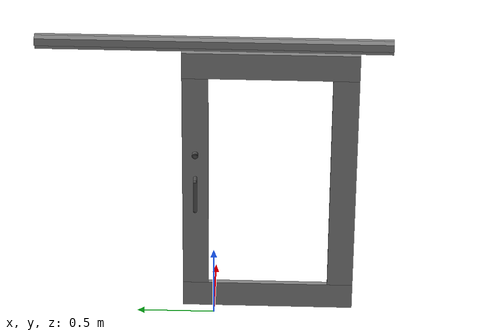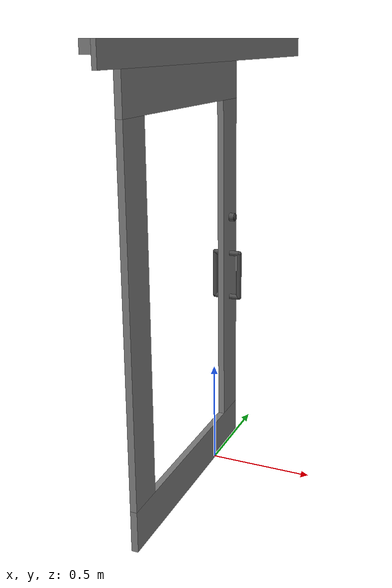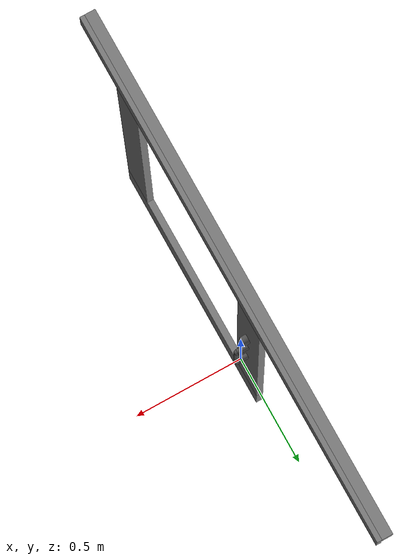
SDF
<?xml version="1.0" ?>
<sdf version="1.4">
    <model name='sliding_door_55_1100_2090'>
      <link name='link'>
        <inertial>
          <mass>50</mass>
          <inertia>
            <ixx>1</ixx>
            <ixy>0</ixy>
            <ixz>0</ixz>
            <iyy>1</iyy>
            <iyz>0</iyz>
            <izz>1</izz>
          </inertia>
        </inertial>
        <visual name='top_guard'>
          <pose>0.0225 0 2.065 0 0 0</pose>
          <geometry>
            <box>
              <size>0.045 2.2 0.05</size>
            </box>
          </geometry>
          <material>
            <!-- hsr_color/white -->
            <name>white</name>
            <ambient>1 1 1 1</ambient>
            <diffuse>0.5 0.5 0.5 1</diffuse>
            <specular>0 0 0 1</specular>
            <emissive>0 0 0 1</emissive>
            <shading>gouraud</shading>
            <receive_shadows>on</receive_shadows>
          </material>
        </visual>
        <collision name='collision_top_guard'>
          <pose>0.0225 0 2.065 0 0 0</pose>
          <geometry>
            <box>
              <size>0.045 2.2 0.05</size>
            </box>
          </geometry>
          <max_contacts>10</max_contacts>
          <surface>
            <bounce/>
            <friction>
              <ode/>
            </friction>
            <contact>
              <ode/>
            </contact>
          </surface>
        </collision>
        <visual name='front_guard'>
          <pose>0.055 0 2.04 0 0 0</pose>
          <geometry>
            <box>
              <size>0.020 2.2 0.10</size>
            </box>
          </geometry>
          <material>
            <!-- hsr_color/white -->
            <name>white</name>
            <ambient>1 1 1 1</ambient>
            <diffuse>0.5 0.5 0.5 1</diffuse>
            <specular>0 0 0 1</specular>
            <emissive>0 0 0 1</emissive>
            <shading>gouraud</shading>
            <receive_shadows>on</receive_shadows>
          </material>
        </visual>
        <collision name='collision_front_guard'>
          <pose>0.055 0 2.04 0 0 0</pose>
          <geometry>
            <box>
              <size>0.020 2.2 0.10</size>
            </box>
          </geometry>
          <max_contacts>10</max_contacts>
          <surface>
            <bounce/>
            <friction>
              <ode/>
            </friction>
            <contact>
              <ode/>
            </contact>
          </surface>
        </collision>
        <visual name='top_frame'>
          <pose>0.0225 -0.35 1.9075 0 0 0</pose>
          <geometry>
            <box>
              <size>0.030 1.1 0.185</size>
            </box>
          </geometry>
          <material>
            <!-- base_materials/wood -->
            <name>wood</name>
            <ambient>1 1 1 1</ambient>
            <diffuse>0.5 0.5 0.5 1.0</diffuse>
            <specular>0 0 0 1.0</specular>
            <shininess>12.5</shininess>
            <pbr>
              <metal>
                <albedo_map>model://base_materials/wood/textures/light_wood.png</albedo_map>
                <max_anisotropy>16</max_anisotropy>
                <metalness>0</metalness>
              </metal>
            </pbr>
          </material>
        </visual>
        <collision name='collision_top_frame'>
          <pose>0.0225 -0.35 1.9075 0 0 0</pose>
          <geometry>
            <box>
              <size>0.030 1.1 0.185</size>
            </box>
          </geometry>
          <max_contacts>10</max_contacts>
          <surface>
            <bounce/>
            <friction>
              <ode/>
            </friction>
            <contact>
              <ode/>
            </contact>
          </surface>
        </collision>
        <visual name='right_frame'>
          <pose>0.0225 0.1175 1.0250 0 0 0</pose>
          <geometry>
            <box>
              <size>0.030 0.165 1.580</size>
            </box>
          </geometry>
          <material>
            <!-- base_materials/wood -->
            <name>wood</name>
            <ambient>1 1 1 1</ambient>
            <diffuse>0.5 0.5 0.5 1.0</diffuse>
            <specular>0 0 0 1.0</specular>
            <shininess>12.5</shininess>
            <pbr>
              <metal>
                <albedo_map>model://base_materials/wood/textures/light_wood.png</albedo_map>
                <max_anisotropy>16</max_anisotropy>
                <metalness>0</metalness>
              </metal>
            </pbr>
          </material>
        </visual>
        <collision name='collision_right_frame'>
          <pose>0.0225 0.1175 1.0250 0 0 0</pose>
          <geometry>
            <box>
              <size>0.030 0.165 1.580</size>
            </box>
          </geometry>
          <max_contacts>10</max_contacts>
          <surface>
            <bounce/>
            <friction>
              <ode/>
            </friction>
            <contact>
              <ode/>
            </contact>
          </surface>
        </collision>
        <visual name='left_frame'>
          <pose>0.0225 -0.8175 1.0250 0 0 0</pose>
          <geometry>
            <box>
              <size>0.030 0.165 1.580</size>
            </box>
          </geometry>
          <material>
            <!-- base_materials/wood -->
            <name>wood</name>
            <ambient>1 1 1 1</ambient>
            <diffuse>0.5 0.5 0.5 1.0</diffuse>
            <specular>0 0 0 1.0</specular>
            <shininess>12.5</shininess>
            <pbr>
              <metal>
                <albedo_map>model://base_materials/wood/textures/light_wood.png</albedo_map>
                <max_anisotropy>16</max_anisotropy>
                <metalness>0</metalness>
              </metal>
            </pbr>
          </material>
        </visual>
        <collision name='collision_left_frame'>
          <pose>0.0225 -0.8175 1.0250 0 0 0</pose>
          <geometry>
            <box>
              <size>0.030 0.165 1.580</size>
            </box>
          </geometry>
          <max_contacts>10</max_contacts>
          <surface>
            <bounce/>
            <friction>
              <ode/>
            </friction>
            <contact>
              <ode/>
            </contact>
          </surface>
        </collision>
        <visual name='bottom_frame'>
          <pose>0.0225 -0.35 0.1425 0 0 0</pose>
          <geometry>
            <box>
              <size>0.030 1.1 0.185</size>
            </box>
          </geometry>
          <material>
            <!-- base_materials/wood -->
            <name>wood</name>
            <ambient>1 1 1 1</ambient>
            <diffuse>0.5 0.5 0.5 1.0</diffuse>
            <specular>0 0 0 1.0</specular>
            <shininess>12.5</shininess>
            <pbr>
              <metal>
                <albedo_map>model://base_materials/wood/textures/light_wood.png</albedo_map>
                <max_anisotropy>16</max_anisotropy>
                <metalness>0</metalness>
              </metal>
            </pbr>
          </material>
        </visual>
        <collision name='collision_bottom_frame'>
          <pose>0.0225 -0.35 0.1425 0 0 0</pose>
          <geometry>
            <box>
              <size>0.030 1.1 0.185</size>
            </box>
          </geometry>
          <max_contacts>10</max_contacts>
          <surface>
            <bounce/>
            <friction>
              <ode/>
            </friction>
            <contact>
              <ode/>
            </contact>
          </surface>
        </collision>
        <visual name='handle_top_frame'>
          <pose>0.0225 0.1175 1.0675 0 1.5708 0</pose>
          <geometry>
            <cylinder>
              <radius>0.0125</radius>
              <length>0.125</length>
            </cylinder>
          </geometry>
          <material>
            <!-- hsr_color/grey -->
            <name>grey</name>
            <ambient>0.7 0.7 0.7 1</ambient>
            <diffuse>0.3 0.3 0.3 1</diffuse>
            <specular>0 0 0 1</specular>
            <emissive>0 0 0 1</emissive>
            <shading>gouraud</shading>
            <receive_shadows>on</receive_shadows>
          </material>
        </visual>
        <collision name='collision_handle_top_frame'>
          <pose>0.0225 0.1175 1.0675 0 1.5708 0</pose>
          <geometry>
            <cylinder>
              <radius>0.0125</radius>
              <length>0.125</length>
            </cylinder>
          </geometry>
          <max_contacts>10</max_contacts>
          <surface>
            <bounce/>
            <friction>
              <ode/>
            </friction>
            <contact>
              <ode/>
            </contact>
          </surface>
        </collision>
        <visual name='handle_bottom_frame'>
          <pose>0.0225 0.1175 0.8425 0 1.5708 0</pose>
          <geometry>
            <cylinder>
              <radius>0.0125</radius>
              <length>0.125</length>
            </cylinder>
          </geometry>
          <material>
            <!-- hsr_color/grey -->
            <name>grey</name>
            <ambient>0.7 0.7 0.7 1</ambient>
            <diffuse>0.3 0.3 0.3 1</diffuse>
            <specular>0 0 0 1</specular>
            <emissive>0 0 0 1</emissive>
            <shading>gouraud</shading>
            <receive_shadows>on</receive_shadows>
          </material>
        </visual>
        <collision name='collision_handle_bottom_frame'>
          <pose>0.0225 0.1175 0.8425 0 1.5708 0</pose>
          <geometry>
            <cylinder>
              <radius>0.0125</radius>
              <length>0.125</length>
            </cylinder>
          </geometry>
          <max_contacts>10</max_contacts>
          <surface>
            <bounce/>
            <friction>
              <ode/>
            </friction>
            <contact>
              <ode/>
            </contact>
          </surface>
        </collision>
        <visual name='handle_front_frame'>
          <pose>0.085 0.1175 0.955 0 0 0</pose>
          <geometry>
            <cylinder>
              <radius>0.0125</radius>
              <length>0.225</length>
            </cylinder>
          </geometry>
          <material>
            <!-- hsr_color/grey -->
            <name>grey</name>
            <ambient>0.7 0.7 0.7 1</ambient>
            <diffuse>0.3 0.3 0.3 1</diffuse>
            <specular>0 0 0 1</specular>
            <emissive>0 0 0 1</emissive>
            <shading>gouraud</shading>
            <receive_shadows>on</receive_shadows>
          </material>
        </visual>
        <collision name='collision_handle_front_frame'>
          <pose>0.085 0.1175 0.955 0 0 0</pose>
          <geometry>
            <cylinder>
              <radius>0.0125</radius>
              <length>0.225</length>
            </cylinder>
          </geometry>
          <max_contacts>10</max_contacts>
          <surface>
            <bounce/>
            <friction>
              <ode/>
            </friction>
            <contact>
              <ode/>
            </contact>
          </surface>
        </collision>
        <visual name='handle_back_frame'>
          <pose>-0.040 0.1175 0.955 0 0 0</pose>
          <geometry>
            <cylinder>
              <radius>0.0125</radius>
              <length>0.225</length>
            </cylinder>
          </geometry>
          <material>
            <!-- hsr_color/grey -->
            <name>grey</name>
            <ambient>0.7 0.7 0.7 1</ambient>
            <diffuse>0.3 0.3 0.3 1</diffuse>
            <specular>0 0 0 1</specular>
            <emissive>0 0 0 1</emissive>
            <shading>gouraud</shading>
            <receive_shadows>on</receive_shadows>
          </material>
        </visual>
        <collision name='collision_handle_back_frame'>
          <pose>-0.040 0.1175 0.955 0 0 0</pose>
          <geometry>
            <cylinder>
              <radius>0.0125</radius>
              <length>0.225</length>
            </cylinder>
          </geometry>
          <max_contacts>10</max_contacts>
          <surface>
            <bounce/>
            <friction>
              <ode/>
            </friction>
            <contact>
              <ode/>
            </contact>
          </surface>
        </collision>
        <visual name='handle_front_top_corner'>
          <pose>0.0850 0.1175 1.0675 0 0 0</pose>
          <geometry>
            <sphere>
              <radius>0.0125</radius>
            </sphere>
          </geometry>
          <material>
            <!-- hsr_color/grey -->
            <name>grey</name>
            <ambient>0.7 0.7 0.7 1</ambient>
            <diffuse>0.3 0.3 0.3 1</diffuse>
            <specular>0 0 0 1</specular>
            <emissive>0 0 0 1</emissive>
            <shading>gouraud</shading>
            <receive_shadows>on</receive_shadows>
          </material>
        </visual>
        <collision name='collision_handle_front_top_corner'>
          <pose>0.0850 0.1175 1.0675 0 0 0</pose>
          <geometry>
            <sphere>
              <radius>0.0125</radius>
            </sphere>
          </geometry>
          <max_contacts>10</max_contacts>
          <surface>
            <bounce/>
            <friction>
              <ode/>
            </friction>
            <contact>
              <ode/>
            </contact>
          </surface>
        </collision>
        <visual name='handle_front_bottom_corner'>
          <pose>0.0850 0.1175 0.8425 0 0 0</pose>
          <geometry>
            <sphere>
              <radius>0.0125</radius>
            </sphere>
          </geometry>
          <material>
            <!-- hsr_color/grey -->
            <name>grey</name>
            <ambient>0.7 0.7 0.7 1</ambient>
            <diffuse>0.3 0.3 0.3 1</diffuse>
            <specular>0 0 0 1</specular>
            <emissive>0 0 0 1</emissive>
            <shading>gouraud</shading>
            <receive_shadows>on</receive_shadows>
          </material>
        </visual>
        <collision name='collision_handle_front_bottom_corner'>
          <pose>0.0850 0.1175 0.8425 0 0 0</pose>
          <geometry>
            <sphere>
              <radius>0.0125</radius>
            </sphere>
          </geometry>
          <max_contacts>10</max_contacts>
          <surface>
            <bounce/>
            <friction>
              <ode/>
            </friction>
            <contact>
              <ode/>
            </contact>
          </surface>
        </collision>
        <visual name='handle_back_top_corner'>
          <pose>-0.0400 0.1175 1.0675 0 0 0</pose>
          <geometry>
            <sphere>
              <radius>0.0125</radius>
            </sphere>
          </geometry>
          <material>
            <!-- hsr_color/grey -->
            <name>grey</name>
            <ambient>0.7 0.7 0.7 1</ambient>
            <diffuse>0.3 0.3 0.3 1</diffuse>
            <specular>0 0 0 1</specular>
            <emissive>0 0 0 1</emissive>
            <shading>gouraud</shading>
            <receive_shadows>on</receive_shadows>
          </material>
        </visual>
        <collision name='collision_handle_back_top_corner'>
          <pose>-0.0400 0.1175 1.0675 0 0 0</pose>
          <geometry>
            <sphere>
              <radius>0.0125</radius>
            </sphere>
          </geometry>
          <max_contacts>10</max_contacts>
          <surface>
            <bounce/>
            <friction>
              <ode/>
            </friction>
            <contact>
              <ode/>
            </contact>
          </surface>
        </collision>
        <visual name='handle_back_bottom_corner'>
          <pose>-0.0400 0.1175 0.8425 0 0 0</pose>
          <geometry>
            <sphere>
              <radius>0.0125</radius>
            </sphere>
          </geometry>
          <material>
            <!-- hsr_color/grey -->
            <name>grey</name>
            <ambient>0.7 0.7 0.7 1</ambient>
            <diffuse>0.3 0.3 0.3 1</diffuse>
            <specular>0 0 0 1</specular>
            <emissive>0 0 0 1</emissive>
            <shading>gouraud</shading>
            <receive_shadows>on</receive_shadows>
          </material>
        </visual>
        <collision name='collision_handle_back_bottom_corner'>
          <pose>-0.0400 0.1175 0.8425 0 0 0</pose>
          <geometry>
            <sphere>
              <radius>0.0125</radius>
            </sphere>
          </geometry>
          <max_contacts>10</max_contacts>
          <surface>
            <bounce/>
            <friction>
              <ode/>
            </friction>
            <contact>
              <ode/>
            </contact>
          </surface>
        </collision>
        <visual name='handle_lock1'>
          <pose>0.0225 0.1175 1.25 0 1.5708 0</pose>
          <geometry>
            <cylinder>
              <radius>0.02</radius>
              <length>0.08</length>
            </cylinder>
          </geometry>
          <material>
            <!-- hsr_color/grey -->
            <name>grey</name>
            <ambient>0.7 0.7 0.7 1</ambient>
            <diffuse>0.3 0.3 0.3 1</diffuse>
            <specular>0 0 0 1</specular>
            <emissive>0 0 0 1</emissive>
            <shading>gouraud</shading>
            <receive_shadows>on</receive_shadows>
          </material>
        </visual>
        <collision name='collision_handle_lock1'>
          <pose>0.0225 0.1175 1.25 0 1.5708 0</pose>
          <geometry>
            <cylinder>
              <radius>0.02</radius>
              <length>0.08</length>
            </cylinder>
          </geometry>
          <max_contacts>10</max_contacts>
          <surface>
            <bounce/>
            <friction>
              <ode/>
            </friction>
            <contact>
              <ode/>
            </contact>
          </surface>
        </collision>
        <visual name='handle_lock2'>
          <pose>0.0225 0.1175 1.25 0 1.5708 0</pose>
          <geometry>
            <cylinder>
              <radius>0.015</radius>
              <length>0.09</length>
            </cylinder>
          </geometry>
          <material>
            <!-- hsr_color/grey -->
            <name>grey</name>
            <ambient>0.7 0.7 0.7 1</ambient>
            <diffuse>0.3 0.3 0.3 1</diffuse>
            <specular>0 0 0 1</specular>
            <emissive>0 0 0 1</emissive>
            <shading>gouraud</shading>
            <receive_shadows>on</receive_shadows>
          </material>
        </visual>
        <collision name='collision_handle_lock2'>
          <pose>0.0225 0.1175 1.25 0 1.5708 0</pose>
          <geometry>
            <cylinder>
              <radius>0.015</radius>
              <length>0.09</length>
            </cylinder>
          </geometry>
          <max_contacts>10</max_contacts>
          <surface>
            <bounce/>
            <friction>
              <ode/>
            </friction>
            <contact>
              <ode/>
            </contact>
          </surface>
        </collision>
        <velocity_decay>
          <linear>0</linear>
          <angular>0</angular>
        </velocity_decay>
        <self_collide>0</self_collide>
        <kinematic>0</kinematic>
        <gravity>1</gravity>
      </link>
      <static>1</static>
    </model>
</sdf>
